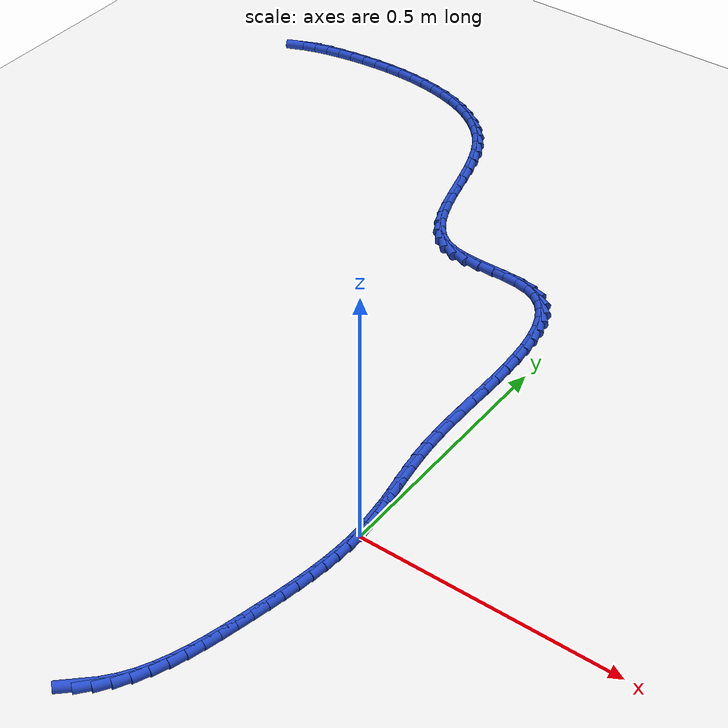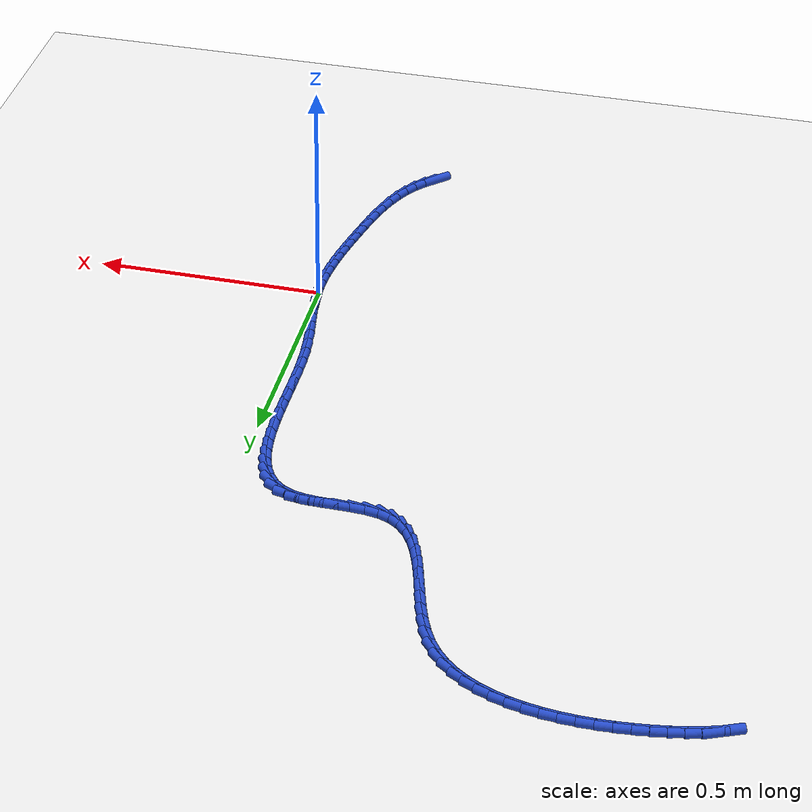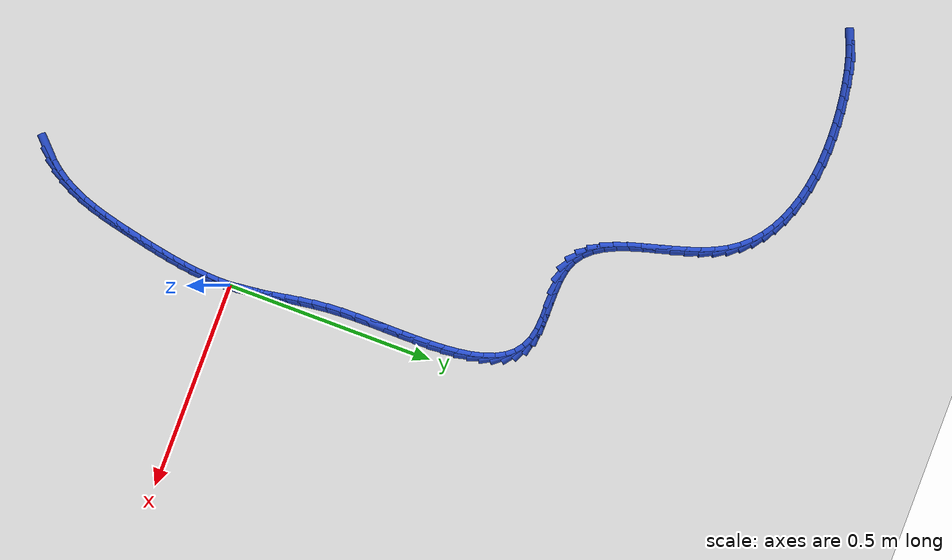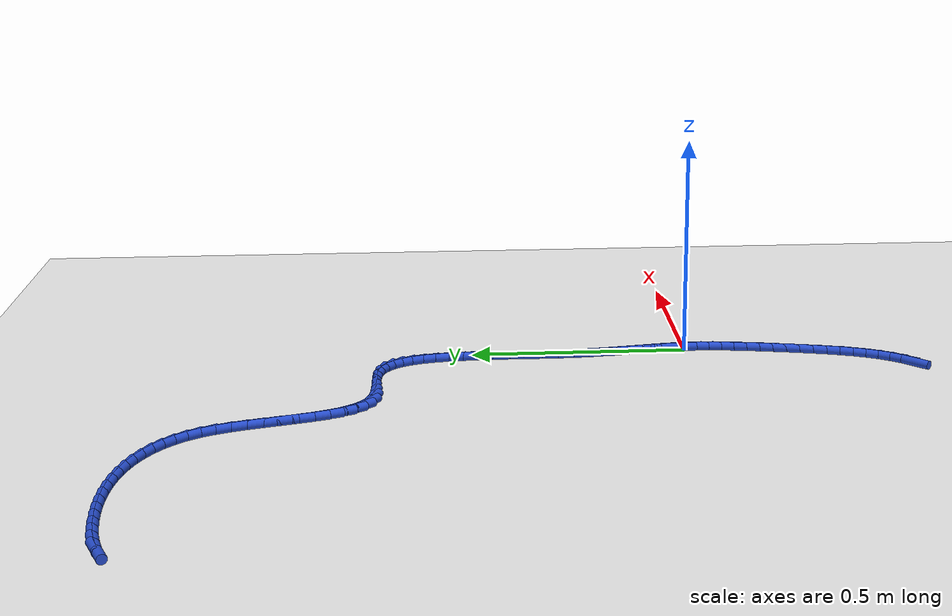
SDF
<sdf version="1.6">
 <world name="default">
  <model name="ground_plane">
   <static>1</static>
   <link name="link">
    <collision name="collision">
     <geometry><plane><normal>0 0 1</normal><size>100 100</size></plane></geometry>
     <surface><friction><ode><mu>100</mu><mu2>50</mu2></ode></friction></surface>
    </collision>
    <visual name="visual">
     <cast_shadows>0</cast_shadows>
     <geometry><plane><normal>0 0 1</normal><size>100 100</size></plane></geometry>
     <material>
      <script><uri>file://media/materials/scripts/gazebo.material</uri><name>Gazebo/WhiteGlow</name></script>
     </material>
    </visual>
   </link>
  </model>
  <model name="line">
   <link name="link_0">
    <pose>-6.938893903907228e-18 -1.1102230246251565e-16 0.01 0 1.57 -1.5054571774756562</pose>
    <collision name="collision">
     <geometry><cylinder><radius>0.01</radius><length>0.08</length></cylinder></geometry>
    </collision>
    <visual name="visual">
     <material>
      <script><name>Gazebo/Blue</name><uri>file://media/materials/scripts/gazebo.material</uri></script>
     </material>
     <geometry><cylinder><radius>0.01</radius><length>0.08</length></cylinder></geometry>
    </visual>
   </link>
   <link name="link_1">
    <pose>-0.0018507561572401888 0.028285058413800475 0.01 0 1.57 -1.4603279902830988</pose>
    <collision name="collision">
     <geometry><cylinder><radius>0.01</radius><length>0.08</length></cylinder></geometry>
    </collision>
    <visual name="visual">
     <material>
      <script><name>Gazebo/Blue</name><uri>file://media/materials/scripts/gazebo.material</uri></script>
     </material>
     <geometry><cylinder><radius>0.01</radius><length>0.08</length></cylinder></geometry>
    </visual>
   </link>
   <link name="link_2">
    <pose>-0.004973957591644684 0.05644232753523722 0.01 0 1.57 -1.428864404420115</pose>
    <collision name="collision">
     <geometry><cylinder><radius>0.01</radius><length>0.08</length></cylinder></geometry>
    </collision>
    <visual name="visual">
     <material>
      <script><name>Gazebo/Blue</name><uri>file://media/materials/scripts/gazebo.material</uri></script>
     </material>
     <geometry><cylinder><radius>0.01</radius><length>0.08</length></cylinder></geometry>
    </visual>
   </link>
   <link name="link_3">
    <pose>-0.009013245252917803 0.08471030083472876 0.01 0 1.57 -1.4114505909345159</pose>
    <collision name="collision">
     <geometry><cylinder><radius>0.01</radius><length>0.08</length></cylinder></geometry>
    </collision>
    <visual name="visual">
     <material>
      <script><name>Gazebo/Blue</name><uri>file://media/materials/scripts/gazebo.material</uri></script>
     </material>
     <geometry><cylinder><radius>0.01</radius><length>0.08</length></cylinder></geometry>
    </visual>
   </link>
   <link name="link_4">
    <pose>-0.013612260090763882 0.1133274717826937 0.01 0 1.57 -1.407817067228215</pose>
    <collision name="collision">
     <geometry><cylinder><radius>0.01</radius><length>0.08</length></cylinder></geometry>
    </collision>
    <visual name="visual">
     <material>
      <script><name>Gazebo/Blue</name><uri>file://media/materials/scripts/gazebo.material</uri></script>
     </material>
     <geometry><cylinder><radius>0.01</radius><length>0.08</length></cylinder></geometry>
    </visual>
   </link>
   <link name="link_5">
    <pose>-0.018414643054887242 0.14253233384955064 0.01 0 1.57 -1.4171962833089378</pose>
    <collision name="collision">
     <geometry><cylinder><radius>0.01</radius><length>0.08</length></cylinder></geometry>
    </collision>
    <visual name="visual">
     <material>
      <script><name>Gazebo/Blue</name><uri>file://media/materials/scripts/gazebo.material</uri></script>
     </material>
     <geometry><cylinder><radius>0.01</radius><length>0.08</length></cylinder></geometry>
    </visual>
   </link>
   <link name="link_6">
    <pose>-0.02306403509499219 0.1725633805057181 0.01 0 1.57 -1.4384361056241508</pose>
    <collision name="collision">
     <geometry><cylinder><radius>0.01</radius><length>0.08</length></cylinder></geometry>
    </collision>
    <visual name="visual">
     <material>
      <script><name>Gazebo/Blue</name><uri>file://media/materials/scripts/gazebo.material</uri></script>
     </material>
     <geometry><cylinder><radius>0.01</radius><length>0.08</length></cylinder></geometry>
    </visual>
   </link>
   <link name="link_7">
    <pose>-0.02720407716078306 0.20365910522161473 0.01 0 1.57 -1.4700752066322118</pose>
    <collision name="collision">
     <geometry><cylinder><radius>0.01</radius><length>0.08</length></cylinder></geometry>
    </collision>
    <visual name="visual">
     <material>
      <script><name>Gazebo/Blue</name><uri>file://media/materials/scripts/gazebo.material</uri></script>
     </material>
     <geometry><cylinder><radius>0.01</radius><length>0.08</length></cylinder></geometry>
    </visual>
   </link>
   <link name="link_8">
    <pose>-0.030478410201964172 0.23605800146765918 0.01 0 1.57 -1.5095136919218846</pose>
    <collision name="collision">
     <geometry><cylinder><radius>0.01</radius><length>0.08</length></cylinder></geometry>
    </collision>
    <visual name="visual">
     <material>
      <script><name>Gazebo/Blue</name><uri>file://media/materials/scripts/gazebo.material</uri></script>
     </material>
     <geometry><cylinder><radius>0.01</radius><length>0.08</length></cylinder></geometry>
    </visual>
   </link>
   <link name="link_9">
    <pose>-0.032559363422242346 0.26997213591978664 0.01 0 1.57 -1.543769036115609</pose>
    <collision name="collision">
     <geometry><cylinder><radius>0.01</radius><length>0.08</length></cylinder></geometry>
    </collision>
    <visual name="visual">
     <material>
      <script><name>Gazebo/Blue</name><uri>file://media/materials/scripts/gazebo.material</uri></script>
     </material>
     <geometry><cylinder><radius>0.01</radius><length>0.08</length></cylinder></geometry>
    </visual>
   </link>
   <link name="link_10">
    <pose>-0.033513082443162624 0.30525080289638395 0.01 0 1.57 -1.565865856643343</pose>
    <collision name="collision">
     <geometry><cylinder><radius>0.01</radius><length>0.08</length></cylinder></geometry>
    </collision>
    <visual name="visual">
     <material>
      <script><name>Gazebo/Blue</name><uri>file://media/materials/scripts/gazebo.material</uri></script>
     </material>
     <geometry><cylinder><radius>0.01</radius><length>0.08</length></cylinder></geometry>
    </visual>
   </link>
   <link name="link_11">
    <pose>-0.03369171009792617 0.3414798443100342 0.01 0 1.57 1.564324846531904</pose>
    <collision name="collision">
     <geometry><cylinder><radius>0.01</radius><length>0.08</length></cylinder></geometry>
    </collision>
    <visual name="visual">
     <material>
      <script><name>Gazebo/Blue</name><uri>file://media/materials/scripts/gazebo.material</uri></script>
     </material>
     <geometry><cylinder><radius>0.01</radius><length>0.08</length></cylinder></geometry>
    </visual>
   </link>
   <link name="link_12">
    <pose>-0.03345381946989738 0.37823917871181073 0.01 0 1.57 1.5627726456972344</pose>
    <collision name="collision">
     <geometry><cylinder><radius>0.01</radius><length>0.08</length></cylinder></geometry>
    </collision>
    <visual name="visual">
     <material>
      <script><name>Gazebo/Blue</name><uri>file://media/materials/scripts/gazebo.material</uri></script>
     </material>
     <geometry><cylinder><radius>0.01</radius><length>0.08</length></cylinder></geometry>
    </visual>
   </link>
   <link name="link_13">
    <pose>-0.03315798364244069 0.41510872465278653 0.01 0 1.57 -1.570665251879237</pose>
    <collision name="collision">
     <geometry><cylinder><radius>0.01</radius><length>0.08</length></cylinder></geometry>
    </collision>
    <visual name="visual">
     <material>
      <script><name>Gazebo/Blue</name><uri>file://media/materials/scripts/gazebo.material</uri></script>
     </material>
     <geometry><cylinder><radius>0.01</radius><length>0.08</length></cylinder></geometry>
    </visual>
   </link>
   <link name="link_14">
    <pose>-0.033162775698920476 0.4516684006840346 0.01 0 1.57 -1.5522665436756358</pose>
    <collision name="collision">
     <geometry><cylinder><radius>0.01</radius><length>0.08</length></cylinder></geometry>
    </collision>
    <visual name="visual">
     <material>
      <script><name>Gazebo/Blue</name><uri>file://media/materials/scripts/gazebo.material</uri></script>
     </material>
     <geometry><cylinder><radius>0.01</radius><length>0.08</length></cylinder></geometry>
    </visual>
   </link>
   <link name="link_15">
    <pose>-0.03382676872270118 0.48749812535662834 0.01 0 1.57 -1.5223399967057758</pose>
    <collision name="collision">
     <geometry><cylinder><radius>0.01</radius><length>0.08</length></cylinder></geometry>
    </collision>
    <visual name="visual">
     <material>
      <script><name>Gazebo/Blue</name><uri>file://media/materials/scripts/gazebo.material</uri></script>
     </material>
     <geometry><cylinder><radius>0.01</radius><length>0.08</length></cylinder></geometry>
    </visual>
   </link>
   <link name="link_16">
    <pose>-0.03550853579714719 0.5221778172216409 0.01 0 1.57 -1.4786942097951852</pose>
    <collision name="collision">
     <geometry><cylinder><radius>0.01</radius><length>0.08</length></cylinder></geometry>
    </collision>
    <visual name="visual">
     <material>
      <script><name>Gazebo/Blue</name><uri>file://media/materials/scripts/gazebo.material</uri></script>
     </material>
     <geometry><cylinder><radius>0.01</radius><length>0.08</length></cylinder></geometry>
    </visual>
   </link>
   <link name="link_17">
    <pose>-0.03856665000562291 0.5552873948301452 0.01 0 1.57 -1.4179763216596335</pose>
    <collision name="collision">
     <geometry><cylinder><radius>0.01</radius><length>0.08</length></cylinder></geometry>
    </collision>
    <visual name="visual">
     <material>
      <script><name>Gazebo/Blue</name><uri>file://media/materials/scripts/gazebo.material</uri></script>
     </material>
     <geometry><cylinder><radius>0.01</radius><length>0.08</length></cylinder></geometry>
    </visual>
   </link>
   <link name="link_18">
    <pose>-0.04335968443149279 0.586406776733215 0.01 0 1.57 -1.3353718067991045</pose>
    <collision name="collision">
     <geometry><cylinder><radius>0.01</radius><length>0.08</length></cylinder></geometry>
    </collision>
    <visual name="visual">
     <material>
      <script><name>Gazebo/Blue</name><uri>file://media/materials/scripts/gazebo.material</uri></script>
     </material>
     <geometry><cylinder><radius>0.01</radius><length>0.08</length></cylinder></geometry>
    </visual>
   </link>
   <link name="link_19">
    <pose>-0.05024621215812118 0.6151158814819225 0.01 0 1.57 -1.2244799730533134</pose>
    <collision name="collision">
     <geometry><cylinder><radius>0.01</radius><length>0.08</length></cylinder></geometry>
    </collision>
    <visual name="visual">
     <material>
      <script><name>Gazebo/Blue</name><uri>file://media/materials/scripts/gazebo.material</uri></script>
     </material>
     <geometry><cylinder><radius>0.01</radius><length>0.08</length></cylinder></geometry>
    </visual>
   </link>
   <link name="link_20">
    <pose>-0.05958480626887254 0.6409946276273418 0.01 0 1.57 -1.0780630029013674</pose>
    <collision name="collision">
     <geometry><cylinder><radius>0.01</radius><length>0.08</length></cylinder></geometry>
    </collision>
    <visual name="visual">
     <material>
      <script><name>Gazebo/Blue</name><uri>file://media/materials/scripts/gazebo.material</uri></script>
     </material>
     <geometry><cylinder><radius>0.01</radius><length>0.08</length></cylinder></geometry>
    </visual>
   </link>
   <link name="link_21">
    <pose>-0.07173403984711127 0.6636229337205454 0.01 0 1.57 -0.8911785869316133</pose>
    <collision name="collision">
     <geometry><cylinder><radius>0.01</radius><length>0.08</length></cylinder></geometry>
    </collision>
    <visual name="visual">
     <material>
      <script><name>Gazebo/Blue</name><uri>file://media/materials/scripts/gazebo.material</uri></script>
     </material>
     <geometry><cylinder><radius>0.01</radius><length>0.08</length></cylinder></geometry>
    </visual>
   </link>
   <link name="link_22">
    <pose>-0.08705248597620173 0.6825807183126067 0.01 0 1.57 -0.6679159367749155</pose>
    <collision name="collision">
     <geometry><cylinder><radius>0.01</radius><length>0.08</length></cylinder></geometry>
    </collision>
    <visual name="visual">
     <material>
      <script><name>Gazebo/Blue</name><uri>file://media/materials/scripts/gazebo.material</uri></script>
     </material>
     <geometry><cylinder><radius>0.01</radius><length>0.08</length></cylinder></geometry>
    </visual>
   </link>
   <link name="link_23">
    <pose>-0.1058987177395084 0.697447899954599 0.01 0 1.57 -0.42748396133746797</pose>
    <collision name="collision">
     <geometry><cylinder><radius>0.01</radius><length>0.08</length></cylinder></geometry>
    </collision>
    <visual name="visual">
     <material>
      <script><name>Gazebo/Blue</name><uri>file://media/materials/scripts/gazebo.material</uri></script>
     </material>
     <geometry><cylinder><radius>0.01</radius><length>0.08</length></cylinder></geometry>
    </visual>
   </link>
   <link name="link_24">
    <pose>-0.12863130822039573 0.7078043971975954 0.01 0 1.57 -0.20870144032498317</pose>
    <collision name="collision">
     <geometry><cylinder><radius>0.01</radius><length>0.08</length></cylinder></geometry>
    </collision>
    <visual name="visual">
     <material>
      <script><name>Gazebo/Blue</name><uri>file://media/materials/scripts/gazebo.material</uri></script>
     </material>
     <geometry><cylinder><radius>0.01</radius><length>0.08</length></cylinder></geometry>
    </visual>
   </link>
   <link name="link_25">
    <pose>-0.15540791957663663 0.7134752889670596 0.01 0 1.57 -0.07275181994475947</pose>
    <collision name="collision">
     <geometry><cylinder><radius>0.01</radius><length>0.08</length></cylinder></geometry>
    </collision>
    <visual name="visual">
     <material>
      <script><name>Gazebo/Blue</name><uri>file://media/materials/scripts/gazebo.material</uri></script>
     </material>
     <geometry><cylinder><radius>0.01</radius><length>0.08</length></cylinder></geometry>
    </visual>
   </link>
   <link name="link_26">
    <pose>-0.18526695078669697 0.7156514284950204 0.01 0 1.57 -0.010921333018388352</pose>
    <collision name="collision">
     <geometry><cylinder><radius>0.01</radius><length>0.08</length></cylinder></geometry>
    </collision>
    <visual name="visual">
     <material>
      <script><name>Gazebo/Blue</name><uri>file://media/materials/scripts/gazebo.material</uri></script>
     </material>
     <geometry><cylinder><radius>0.01</radius><length>0.08</length></cylinder></geometry>
    </visual>
   </link>
   <link name="link_27">
    <pose>-0.21685933398335697 0.7159964731513244 0.01 0 1.57 -0.005568607727887532</pose>
    <collision name="collision">
     <geometry><cylinder><radius>0.01</radius><length>0.08</length></cylinder></geometry>
    </collision>
    <visual name="visual">
     <material>
      <script><name>Gazebo/Blue</name><uri>file://media/materials/scripts/gazebo.material</uri></script>
     </material>
     <geometry><cylinder><radius>0.01</radius><length>0.08</length></cylinder></geometry>
    </visual>
   </link>
   <link name="link_28">
    <pose>-0.2488356258727135 0.7161745384180177 0.01 0 1.57 -0.05396755352213023</pose>
    <collision name="collision">
     <geometry><cylinder><radius>0.01</radius><length>0.08</length></cylinder></geometry>
    </collision>
    <visual name="visual">
     <material>
      <script><name>Gazebo/Blue</name><uri>file://media/materials/scripts/gazebo.material</uri></script>
     </material>
     <geometry><cylinder><radius>0.01</radius><length>0.08</length></cylinder></geometry>
    </visual>
   </link>
   <link name="link_29">
    <pose>-0.27984638316086347 0.7178497397771471 0.01 0 1.57 -0.16697307033068925</pose>
    <collision name="collision">
     <geometry><cylinder><radius>0.01</radius><length>0.08</length></cylinder></geometry>
    </collision>
    <visual name="visual">
     <material>
      <script><name>Gazebo/Blue</name><uri>file://media/materials/scripts/gazebo.material</uri></script>
     </material>
     <geometry><cylinder><radius>0.01</radius><length>0.08</length></cylinder></geometry>
    </visual>
   </link>
   <link name="link_30">
    <pose>-0.30854216255390365 0.7226861927107595 0.01 0 1.57 -0.36575165464676584</pose>
    <collision name="collision">
     <geometry><cylinder><radius>0.01</radius><length>0.08</length></cylinder></geometry>
    </collision>
    <visual name="visual">
     <material>
      <script><name>Gazebo/Blue</name><uri>file://media/materials/scripts/gazebo.material</uri></script>
     </material>
     <geometry><cylinder><radius>0.01</radius><length>0.08</length></cylinder></geometry>
    </visual>
   </link>
   <link name="link_31">
    <pose>-0.3336204085279111 0.7322907525275851 0.01 0 1.57 -0.612045686818249</pose>
    <collision name="collision">
     <geometry><cylinder><radius>0.01</radius><length>0.08</length></cylinder></geometry>
    </collision>
    <visual name="visual">
     <material>
      <script><name>Gazebo/Blue</name><uri>file://media/materials/scripts/gazebo.material</uri></script>
     </material>
     <geometry><cylinder><radius>0.01</radius><length>0.08</length></cylinder></geometry>
    </visual>
   </link>
   <link name="link_32">
    <pose>-0.35472966274941314 0.7471087778392641 0.01 0 1.57 -0.831805815628706</pose>
    <collision name="collision">
     <geometry><cylinder><radius>0.01</radius><length>0.08</length></cylinder></geometry>
    </collision>
    <visual name="visual">
     <material>
      <script><name>Gazebo/Blue</name><uri>file://media/materials/scripts/gazebo.material</uri></script>
     </material>
     <geometry><cylinder><radius>0.01</radius><length>0.08</length></cylinder></geometry>
    </visual>
   </link>
   <link name="link_33">
    <pose>-0.37240378605322877 0.7665044598434593 0.01 0 1.57 -1.0046292670729737</pose>
    <collision name="collision">
     <geometry><cylinder><radius>0.01</radius><length>0.08</length></cylinder></geometry>
    </collision>
    <visual name="visual">
     <material>
      <script><name>Gazebo/Blue</name><uri>file://media/materials/scripts/gazebo.material</uri></script>
     </material>
     <geometry><cylinder><radius>0.01</radius><length>0.08</length></cylinder></geometry>
    </visual>
   </link>
   <link name="link_34">
    <pose>-0.38721035025383926 0.789800821293717 0.01 0 1.57 -1.130134532932898</pose>
    <collision name="collision">
     <geometry><cylinder><radius>0.01</radius><length>0.08</length></cylinder></geometry>
    </collision>
    <visual name="visual">
     <material>
      <script><name>Gazebo/Blue</name><uri>file://media/materials/scripts/gazebo.material</uri></script>
     </material>
     <geometry><cylinder><radius>0.01</radius><length>0.08</length></cylinder></geometry>
    </visual>
   </link>
   <link name="link_35">
    <pose>-0.39971692716572577 0.8163208849435838 0.01 0 1.57 -1.2158279734016342</pose>
    <collision name="collision">
     <geometry><cylinder><radius>0.01</radius><length>0.08</length></cylinder></geometry>
    </collision>
    <visual name="visual">
     <material>
      <script><name>Gazebo/Blue</name><uri>file://media/materials/scripts/gazebo.material</uri></script>
     </material>
     <geometry><cylinder><radius>0.01</radius><length>0.08</length></cylinder></geometry>
    </visual>
   </link>
   <link name="link_36">
    <pose>-0.41049108860336964 0.8453876735466065 0.01 0 1.57 -1.2696306897173477</pose>
    <collision name="collision">
     <geometry><cylinder><radius>0.01</radius><length>0.08</length></cylinder></geometry>
    </collision>
    <visual name="visual">
     <material>
      <script><name>Gazebo/Blue</name><uri>file://media/materials/scripts/gazebo.material</uri></script>
     </material>
     <geometry><cylinder><radius>0.01</radius><length>0.08</length></cylinder></geometry>
    </visual>
   </link>
   <link name="link_37">
    <pose>-0.4201004063812523 0.8763242098563314 0.01 0 1.57 -1.2973305151649175</pose>
    <collision name="collision">
     <geometry><cylinder><radius>0.01</radius><length>0.08</length></cylinder></geometry>
    </collision>
    <visual name="visual">
     <material>
      <script><name>Gazebo/Blue</name><uri>file://media/materials/scripts/gazebo.material</uri></script>
     </material>
     <geometry><cylinder><radius>0.01</radius><length>0.08</length></cylinder></geometry>
    </visual>
   </link>
   <link name="link_38">
    <pose>-0.4291124523138549 0.9084535166263059 0.01 0 1.57 -1.3022893392485444</pose>
    <collision name="collision">
     <geometry><cylinder><radius>0.01</radius><length>0.08</length></cylinder></geometry>
    </collision>
    <visual name="visual">
     <material>
      <script><name>Gazebo/Blue</name><uri>file://media/materials/scripts/gazebo.material</uri></script>
     </material>
     <geometry><cylinder><radius>0.01</radius><length>0.08</length></cylinder></geometry>
    </visual>
   </link>
   <link name="link_39">
    <pose>-0.43809479821565883 0.9410986166100758 0.01 0 1.57 -1.285704959052395</pose>
    <collision name="collision">
     <geometry><cylinder><radius>0.01</radius><length>0.08</length></cylinder></geometry>
    </collision>
    <visual name="visual">
     <material>
      <script><name>Gazebo/Blue</name><uri>file://media/materials/scripts/gazebo.material</uri></script>
     </material>
     <geometry><cylinder><radius>0.01</radius><length>0.08</length></cylinder></geometry>
    </visual>
   </link>
   <link name="link_40">
    <pose>-0.44761501590114544 0.9735825325611884 0.01 0 1.57 -1.2468553366133452</pose>
    <collision name="collision">
     <geometry><cylinder><radius>0.01</radius><length>0.08</length></cylinder></geometry>
    </collision>
    <visual name="visual">
     <material>
      <script><name>Gazebo/Blue</name><uri>file://media/materials/scripts/gazebo.material</uri></script>
     </material>
     <geometry><cylinder><radius>0.01</radius><length>0.08</length></cylinder></geometry>
    </visual>
   </link>
   <link name="link_41">
    <pose>-0.4582406771847959 1.0052282872331904 0.01 0 1.57 -1.1832592630384855</pose>
    <collision name="collision">
     <geometry><cylinder><radius>0.01</radius><length>0.08</length></cylinder></geometry>
    </collision>
    <visual name="visual">
     <material>
      <script><name>Gazebo/Blue</name><uri>file://media/materials/scripts/gazebo.material</uri></script>
     </material>
     <geometry><cylinder><radius>0.01</radius><length>0.08</length></cylinder></geometry>
    </visual>
   </link>
   <link name="link_42">
    <pose>-0.47053935388109147 1.0353589033796275 0.01 0 1.57 -1.0909603004029662</pose>
    <collision name="collision">
     <geometry><cylinder><radius>0.01</radius><length>0.08</length></cylinder></geometry>
    </collision>
    <visual name="visual">
     <material>
      <script><name>Gazebo/Blue</name><uri>file://media/materials/scripts/gazebo.material</uri></script>
     </material>
     <geometry><cylinder><radius>0.01</radius><length>0.08</length></cylinder></geometry>
    </visual>
   </link>
   <link name="link_43">
    <pose>-0.4850786178045136 1.0632974037540477 0.01 0 1.57 -0.9682531319410803</pose>
    <collision name="collision">
     <geometry><cylinder><radius>0.01</radius><length>0.08</length></cylinder></geometry>
    </collision>
    <visual name="visual">
     <material>
      <script><name>Gazebo/Blue</name><uri>file://media/materials/scripts/gazebo.material</uri></script>
     </material>
     <geometry><cylinder><radius>0.01</radius><length>0.08</length></cylinder></geometry>
    </visual>
   </link>
   <link name="link_44">
    <pose>-0.5023645933400334 1.0884268665331065 0.01 0 1.57 -0.8368560827267585</pose>
    <collision name="collision">
     <geometry><cylinder><radius>0.01</radius><length>0.08</length></cylinder></geometry>
    </collision>
    <visual name="visual">
     <material>
      <script><name>Gazebo/Blue</name><uri>file://media/materials/scripts/gazebo.material</uri></script>
     </material>
     <geometry><cylinder><radius>0.01</radius><length>0.08</length></cylinder></geometry>
    </visual>
   </link>
   <link name="link_45">
    <pose>-0.5223924502466633 1.1106297495501276 0.01 0 1.57 -0.7114532544425247</pose>
    <collision name="collision">
     <geometry><cylinder><radius>0.01</radius><length>0.08</length></cylinder></geometry>
    </collision>
    <visual name="visual">
     <material>
      <script><name>Gazebo/Blue</name><uri>file://media/materials/scripts/gazebo.material</uri></script>
     </material>
     <geometry><cylinder><radius>0.01</radius><length>0.08</length></cylinder></geometry>
    </visual>
   </link>
   <link name="link_46">
    <pose>-0.544904055386851 1.1300360753087444 0.01 0 1.57 -0.5950031883651092</pose>
    <collision name="collision">
     <geometry><cylinder><radius>0.01</radius><length>0.08</length></cylinder></geometry>
    </collision>
    <visual name="visual">
     <material>
      <script><name>Gazebo/Blue</name><uri>file://media/materials/scripts/gazebo.material</uri></script>
     </material>
     <geometry><cylinder><radius>0.01</radius><length>0.08</length></cylinder></geometry>
    </visual>
   </link>
   <link name="link_47">
    <pose>-0.5696394572779547 1.1467776434655916 0.01 0 1.57 -0.48905327663435233</pose>
    <collision name="collision">
     <geometry><cylinder><radius>0.01</radius><length>0.08</length></cylinder></geometry>
    </collision>
    <visual name="visual">
     <material>
      <script><name>Gazebo/Blue</name><uri>file://media/materials/scripts/gazebo.material</uri></script>
     </material>
     <geometry><cylinder><radius>0.01</radius><length>0.08</length></cylinder></geometry>
    </visual>
   </link>
   <link name="link_48">
    <pose>-0.5963387044373322 1.1609862536773032 0.01 0 1.57 -0.39397516067728205</pose>
    <collision name="collision">
     <geometry><cylinder><radius>0.01</radius><length>0.08</length></cylinder></geometry>
    </collision>
    <visual name="visual">
     <material>
      <script><name>Gazebo/Blue</name><uri>file://media/materials/scripts/gazebo.material</uri></script>
     </material>
     <geometry><cylinder><radius>0.01</radius><length>0.08</length></cylinder></geometry>
    </visual>
   </link>
   <link name="link_49">
    <pose>-0.6247418453823417 1.1727937056005149 0.01 0 1.57 -0.3093086091629866</pose>
    <collision name="collision">
     <geometry><cylinder><radius>0.01</radius><length>0.08</length></cylinder></geometry>
    </collision>
    <visual name="visual">
     <material>
      <script><name>Gazebo/Blue</name><uri>file://media/materials/scripts/gazebo.material</uri></script>
     </material>
     <geometry><cylinder><radius>0.01</radius><length>0.08</length></cylinder></geometry>
    </visual>
   </link>
   <link name="link_50">
    <pose>-0.6545889286303403 1.1823317988918594 0.01 0 1.57 -0.23411470245884441</pose>
    <collision name="collision">
     <geometry><cylinder><radius>0.01</radius><length>0.08</length></cylinder></geometry>
    </collision>
    <visual name="visual">
     <material>
      <script><name>Gazebo/Blue</name><uri>file://media/materials/scripts/gazebo.material</uri></script>
     </material>
     <geometry><cylinder><radius>0.01</radius><length>0.08</length></cylinder></geometry>
    </visual>
   </link>
   <link name="link_51">
    <pose>-0.685620002698687 1.1897323332079721 0.01 0 1.57 -0.1672465088260299</pose>
    <collision name="collision">
     <geometry><cylinder><radius>0.01</radius><length>0.08</length></cylinder></geometry>
    </collision>
    <visual name="visual">
     <material>
      <script><name>Gazebo/Blue</name><uri>file://media/materials/scripts/gazebo.material</uri></script>
     </material>
     <geometry><cylinder><radius>0.01</radius><length>0.08</length></cylinder></geometry>
    </visual>
   </link>
   <link name="link_52">
    <pose>-0.717575116104739 1.1951271082054875 0.01 0 1.57 -0.107520633574932</pose>
    <collision name="collision">
     <geometry><cylinder><radius>0.01</radius><length>0.08</length></cylinder></geometry>
    </collision>
    <visual name="visual">
     <material>
      <script><name>Gazebo/Blue</name><uri>file://media/materials/scripts/gazebo.material</uri></script>
     </material>
     <geometry><cylinder><radius>0.01</radius><length>0.08</length></cylinder></geometry>
    </visual>
   </link>
   <link name="link_53">
    <pose>-0.7501943173658542 1.19864792354104 0.01 0 1.57 -0.05380856416560193</pose>
    <collision name="collision">
     <geometry><cylinder><radius>0.01</radius><length>0.08</length></cylinder></geometry>
    </collision>
    <visual name="visual">
     <material>
      <script><name>Gazebo/Blue</name><uri>file://media/materials/scripts/gazebo.material</uri></script>
     </material>
     <geometry><cylinder><radius>0.01</radius><length>0.08</length></cylinder></geometry>
    </visual>
   </link>
   <link name="link_54">
    <pose>-0.7832176549993908 1.200426578871264 0.01 0 1.57 -0.0050740460673506784</pose>
    <collision name="collision">
     <geometry><cylinder><radius>0.01</radius><length>0.08</length></cylinder></geometry>
    </collision>
    <visual name="visual">
     <material>
      <script><name>Gazebo/Blue</name><uri>file://media/materials/scripts/gazebo.material</uri></script>
     </material>
     <geometry><cylinder><radius>0.01</radius><length>0.08</length></cylinder></geometry>
    </visual>
   </link>
   <link name="link_55">
    <pose>-0.8163851775227068 1.200594873852794 0.01 0 1.57 0.03962209979863795</pose>
    <collision name="collision">
     <geometry><cylinder><radius>0.01</radius><length>0.08</length></cylinder></geometry>
    </collision>
    <visual name="visual">
     <material>
      <script><name>Gazebo/Blue</name><uri>file://media/materials/scripts/gazebo.material</uri></script>
     </material>
     <geometry><cylinder><radius>0.01</radius><length>0.08</length></cylinder></geometry>
    </visual>
   </link>
   <link name="link_56">
    <pose>-0.8494369334531598 1.1992846081422643 0.01 0 1.57 0.08113571758164483</pose>
    <collision name="collision">
     <geometry><cylinder><radius>0.01</radius><length>0.08</length></cylinder></geometry>
    </collision>
    <visual name="visual">
     <material>
      <script><name>Gazebo/Blue</name><uri>file://media/materials/scripts/gazebo.material</uri></script>
     </material>
     <geometry><cylinder><radius>0.01</radius><length>0.08</length></cylinder></geometry>
    </visual>
   </link>
   <link name="link_57">
    <pose>-0.8821129713081082 1.1966275813963099 0.01 0 1.57 0.12026399499485653</pose>
    <collision name="collision">
     <geometry><cylinder><radius>0.01</radius><length>0.08</length></cylinder></geometry>
    </collision>
    <visual name="visual">
     <material>
      <script><name>Gazebo/Blue</name><uri>file://media/materials/scripts/gazebo.material</uri></script>
     </material>
     <geometry><cylinder><radius>0.01</radius><length>0.08</length></cylinder></geometry>
    </visual>
   </link>
   <link name="link_58">
    <pose>-0.9141533396049092 1.192755593271564 0.01 0 1.57 0.15778171728028711</pose>
    <collision name="collision">
     <geometry><cylinder><radius>0.01</radius><length>0.08</length></cylinder></geometry>
    </collision>
    <visual name="visual">
     <material>
      <script><name>Gazebo/Blue</name><uri>file://media/materials/scripts/gazebo.material</uri></script>
     </material>
     <geometry><cylinder><radius>0.01</radius><length>0.08</length></cylinder></geometry>
    </visual>
   </link>
   <link name="link_59">
    <pose>-0.9452981631344576 1.1878003205004048 0.01 0 1.57 0.19815385010009096</pose>
    <collision name="collision">
     <geometry><cylinder><radius>0.01</radius><length>0.08</length></cylinder></geometry>
    </collision>
    <visual name="visual">
     <material>
      <script><name>Gazebo/Blue</name><uri>file://media/materials/scripts/gazebo.material</uri></script>
     </material>
     <geometry><cylinder><radius>0.01</radius><length>0.08</length></cylinder></geometry>
    </visual>
   </link>
   <link name="link_60">
    <pose>-0.9753688333845228 1.1817624684609112 0.01 0 1.57 0.2526118643670511</pose>
    <collision name="collision">
     <geometry><cylinder><radius>0.01</radius><length>0.08</length></cylinder></geometry>
    </collision>
    <visual name="visual">
     <material>
      <script><name>Gazebo/Blue</name><uri>file://media/materials/scripts/gazebo.material</uri></script>
     </material>
     <geometry><cylinder><radius>0.01</radius><length>0.08</length></cylinder></geometry>
    </visual>
   </link>
   <link name="link_61">
    <pose>-1.0044223711567437 1.174262996687704 0.01 0 1.57 0.3227078107218876</pose>
    <collision name="collision">
     <geometry><cylinder><radius>0.01</radius><length>0.08</length></cylinder></geometry>
    </collision>
    <visual name="visual">
     <material>
      <script><name>Gazebo/Blue</name><uri>file://media/materials/scripts/gazebo.material</uri></script>
     </material>
     <geometry><cylinder><radius>0.01</radius><length>0.08</length></cylinder></geometry>
    </visual>
   </link>
   <link name="link_62">
    <pose>-1.0325582592678613 1.1648544319152805 0.01 0 1.57 0.40666979276354287</pose>
    <collision name="collision">
     <geometry><cylinder><radius>0.01</radius><length>0.08</length></cylinder></geometry>
    </collision>
    <visual name="visual">
     <material>
      <script><name>Gazebo/Blue</name><uri>file://media/materials/scripts/gazebo.material</uri></script>
     </material>
     <geometry><cylinder><radius>0.01</radius><length>0.08</length></cylinder></geometry>
    </visual>
   </link>
   <link name="link_232">
    <pose>-0.14919727786794842 -0.506717184754968 0.01 0 1.57 0.7606145600691113</pose>
    <collision name="collision">
     <geometry><cylinder><radius>0.01</radius><length>0.08</length></cylinder></geometry>
    </collision>
    <visual name="visual">
     <material>
      <script><name>Gazebo/Blue</name><uri>file://media/materials/scripts/gazebo.material</uri></script>
     </material>
     <geometry><cylinder><radius>0.01</radius><length>0.08</length></cylinder></geometry>
    </visual>
   </link>
   <link name="link_233">
    <pose>-0.12839264280982315 -0.4869190389901881 0.01 0 1.57 0.879083299892567</pose>
    <collision name="collision">
     <geometry><cylinder><radius>0.01</radius><length>0.08</length></cylinder></geometry>
    </collision>
    <visual name="visual">
     <material>
      <script><name>Gazebo/Blue</name><uri>file://media/materials/scripts/gazebo.material</uri></script>
     </material>
     <geometry><cylinder><radius>0.01</radius><length>0.08</length></cylinder></geometry>
    </visual>
   </link>
   <link name="link_234">
    <pose>-0.1101537614698691 -0.4648972581547975 0.01 0 1.57 0.9932481088982386</pose>
    <collision name="collision">
     <geometry><cylinder><radius>0.01</radius><length>0.08</length></cylinder></geometry>
    </collision>
    <visual name="visual">
     <material>
      <script><name>Gazebo/Blue</name><uri>file://media/materials/scripts/gazebo.material</uri></script>
     </material>
     <geometry><cylinder><radius>0.01</radius><length>0.08</length></cylinder></geometry>
    </visual>
   </link>
   <link name="link_235">
    <pose>-0.09440937117321448 -0.4407371869288025 0.01 0 1.57 1.0903973963794507</pose>
    <collision name="collision">
     <geometry><cylinder><radius>0.01</radius><length>0.08</length></cylinder></geometry>
    </collision>
    <visual name="visual">
     <material>
      <script><name>Gazebo/Blue</name><uri>file://media/materials/scripts/gazebo.material</uri></script>
     </material>
     <geometry><cylinder><radius>0.01</radius><length>0.08</length></cylinder></geometry>
    </visual>
   </link>
   <link name="link_236">
    <pose>-0.08086164816200504 -0.4147397681126067 0.01 0 1.57 1.1704807524232042</pose>
    <collision name="collision">
     <geometry><cylinder><radius>0.01</radius><length>0.08</length></cylinder></geometry>
    </collision>
    <visual name="visual">
     <material>
      <script><name>Gazebo/Blue</name><uri>file://media/materials/scripts/gazebo.material</uri></script>
     </material>
     <geometry><cylinder><radius>0.01</radius><length>0.08</length></cylinder></geometry>
    </visual>
   </link>
   <link name="link_237">
    <pose>-0.06921100210849913 -0.3872076255947428 0.01 0 1.57 1.2345652536138332</pose>
    <collision name="collision">
     <geometry><cylinder><radius>0.01</radius><length>0.08</length></cylinder></geometry>
    </collision>
    <visual name="visual">
     <material>
      <script><name>Gazebo/Blue</name><uri>file://media/materials/scripts/gazebo.material</uri></script>
     </material>
     <geometry><cylinder><radius>0.01</radius><length>0.08</length></cylinder></geometry>
    </visual>
   </link>
   <link name="link_238">
    <pose>-0.05915784268495513 -0.3584433832637438 0.01 0 1.57 1.2840687962493778</pose>
    <collision name="collision">
     <geometry><cylinder><radius>0.01</radius><length>0.08</length></cylinder></geometry>
    </collision>
    <visual name="visual">
     <material>
      <script><name>Gazebo/Blue</name><uri>file://media/materials/scripts/gazebo.material</uri></script>
     </material>
     <geometry><cylinder><radius>0.01</radius><length>0.08</length></cylinder></geometry>
    </visual>
   </link>
   <link name="link_239">
    <pose>-0.05040257956363137 -0.3287496650081424 0.01 0 1.57 1.320336763262369</pose>
    <collision name="collision">
     <geometry><cylinder><radius>0.01</radius><length>0.08</length></cylinder></geometry>
    </collision>
    <visual name="visual">
     <material>
      <script><name>Gazebo/Blue</name><uri>file://media/materials/scripts/gazebo.material</uri></script>
     </material>
     <geometry><cylinder><radius>0.01</radius><length>0.08</length></cylinder></geometry>
    </visual>
   </link>
   <link name="link_240">
    <pose>-0.04264562241678643 -0.2984290947164725 0.01 0 1.57 1.3444199618878585</pose>
    <collision name="collision">
     <geometry><cylinder><radius>0.01</radius><length>0.08</length></cylinder></geometry>
    </collision>
    <visual name="visual">
     <material>
      <script><name>Gazebo/Blue</name><uri>file://media/materials/scripts/gazebo.material</uri></script>
     </material>
     <geometry><cylinder><radius>0.01</radius><length>0.08</length></cylinder></geometry>
    </visual>
   </link>
   <link name="link_241">
    <pose>-0.03558738091667823 -0.2677842962772652 0.01 0 1.57 1.3571171717043615</pose>
    <collision name="collision">
     <geometry><cylinder><radius>0.01</radius><length>0.08</length></cylinder></geometry>
    </collision>
    <visual name="visual">
     <material>
      <script><name>Gazebo/Blue</name><uri>file://media/materials/scripts/gazebo.material</uri></script>
     </material>
     <geometry><cylinder><radius>0.01</radius><length>0.08</length></cylinder></geometry>
    </visual>
   </link>
   <link name="link_242">
    <pose>-0.028932479540998552 -0.23711538602451407 0.01 0 1.57 1.3652631664896484</pose>
    <collision name="collision">
     <geometry><cylinder><radius>0.01</radius><length>0.08</length></cylinder></geometry>
    </collision>
    <visual name="visual">
     <material>
      <script><name>Gazebo/Blue</name><uri>file://media/materials/scripts/gazebo.material</uri></script>
     </material>
     <geometry><cylinder><radius>0.01</radius><length>0.08</length></cylinder></geometry>
    </visual>
   </link>
   <link name="link_243">
    <pose>-0.022573003996933235 -0.2066109521885814 0.01 0 1.57 1.3780742233764738</pose>
    <collision name="collision">
     <geometry><cylinder><radius>0.01</radius><length>0.08</length></cylinder></geometry>
    </collision>
    <visual name="visual">
     <material>
      <script><name>Gazebo/Blue</name><uri>file://media/materials/scripts/gazebo.material</uri></script>
     </material>
     <geometry><cylinder><radius>0.01</radius><length>0.08</length></cylinder></geometry>
    </visual>
   </link>
   <link name="link_244">
    <pose>-0.016659172962460122 -0.1763060094806831 0.01 0 1.57 1.3964258427620129</pose>
    <collision name="collision">
     <geometry><cylinder><radius>0.01</radius><length>0.08</length></cylinder></geometry>
    </collision>
    <visual name="visual">
     <material>
      <script><name>Gazebo/Blue</name><uri>file://media/materials/scripts/gazebo.material</uri></script>
     </material>
     <geometry><cylinder><radius>0.01</radius><length>0.08</length></cylinder></geometry>
    </visual>
   </link>
   <link name="link_245">
    <pose>-0.01136000926870318 -0.14622438527721177 0.01 0 1.57 1.420585521322584</pose>
    <collision name="collision">
     <geometry><cylinder><radius>0.01</radius><length>0.08</length></cylinder></geometry>
    </collision>
    <visual name="visual">
     <material>
      <script><name>Gazebo/Blue</name><uri>file://media/materials/scripts/gazebo.material</uri></script>
     </material>
     <geometry><cylinder><radius>0.01</radius><length>0.08</length></cylinder></geometry>
    </visual>
   </link>
   <link name="link_246">
    <pose>-0.00684453574678638 -0.11638990695456002 0.01 0 1.57 1.45086258628304</pose>
    <collision name="collision">
     <geometry><cylinder><radius>0.01</radius><length>0.08</length></cylinder></geometry>
    </collision>
    <visual name="visual">
     <material>
      <script><name>Gazebo/Blue</name><uri>file://media/materials/scripts/gazebo.material</uri></script>
     </material>
     <geometry><cylinder><radius>0.01</radius><length>0.08</length></cylinder></geometry>
    </visual>
   </link>
   <link name="link_247">
    <pose>-0.0032817752278336927 -0.08682640188912039 0.01 0 1.57 1.48758838840559</pose>
    <collision name="collision">
     <geometry><cylinder><radius>0.01</radius><length>0.08</length></cylinder></geometry>
    </collision>
    <visual name="visual">
     <material>
      <script><name>Gazebo/Blue</name><uri>file://media/materials/scripts/gazebo.material</uri></script>
     </material>
     <geometry><cylinder><radius>0.01</radius><length>0.08</length></cylinder></geometry>
    </visual>
   </link>
   <link name="link_248">
    <pose>-0.0008407505429690876 -0.05755769745728545 0.01 0 1.57 1.5310844700553277</pose>
    <collision name="collision">
     <geometry><cylinder><radius>0.01</radius><length>0.08</length></cylinder></geometry>
    </collision>
    <visual name="visual">
     <material>
      <script><name>Gazebo/Blue</name><uri>file://media/materials/scripts/gazebo.material</uri></script>
     </material>
     <geometry><cylinder><radius>0.01</radius><length>0.08</length></cylinder></geometry>
    </visual>
   </link>
   <link name="link_249">
    <pose>0.00030951547668346853 -0.028607621035447776 0.01 0 1.57 -1.5599774124903363</pose>
    <collision name="collision">
     <geometry><cylinder><radius>0.01</radius><length>0.08</length></cylinder></geometry>
    </collision>
    <visual name="visual">
     <material>
      <script><name>Gazebo/Blue</name><uri>file://media/materials/scripts/gazebo.material</uri></script>
     </material>
     <geometry><cylinder><radius>0.01</radius><length>0.08</length></cylinder></geometry>
    </visual>
   </link>
   <link name="link_250">
    <pose>-1.734723475976807e-18 4.85722573273506e-17 0.01 0 1.57 -1.502269659237214</pose>
    <collision name="collision">
     <geometry><cylinder><radius>0.01</radius><length>0.08</length></cylinder></geometry>
    </collision>
    <visual name="visual">
     <material>
      <script><name>Gazebo/Blue</name><uri>file://media/materials/scripts/gazebo.material</uri></script>
     </material>
     <geometry><cylinder><radius>0.01</radius><length>0.08</length></cylinder></geometry>
    </visual>
   </link>
   <link name="link_251">
    <pose>-0.0019383198041434662 0.028241338272665457 0.01 0 1.57 -1.4374458397205763</pose>
    <collision name="collision">
     <geometry><cylinder><radius>0.01</radius><length>0.08</length></cylinder></geometry>
    </collision>
    <visual name="visual">
     <material>
      <script><name>Gazebo/Blue</name><uri>file://media/materials/scripts/gazebo.material</uri></script>
     </material>
     <geometry><cylinder><radius>0.01</radius><length>0.08</length></cylinder></geometry>
    </visual>
   </link>
   <link name="link_252">
    <pose>-0.005674466766870898 0.05609256640615588 0.01 0 1.57 -1.4699767727434392</pose>
    <collision name="collision">
     <geometry><cylinder><radius>0.01</radius><length>0.08</length></cylinder></geometry>
    </collision>
    <visual name="visual">
     <material>
      <script><name>Gazebo/Blue</name><uri>file://media/materials/scripts/gazebo.material</uri></script>
     </material>
     <geometry><cylinder><radius>0.01</radius><length>0.08</length></cylinder></geometry>
    </visual>
   </link>
  </model>
 </world>
</sdf>
